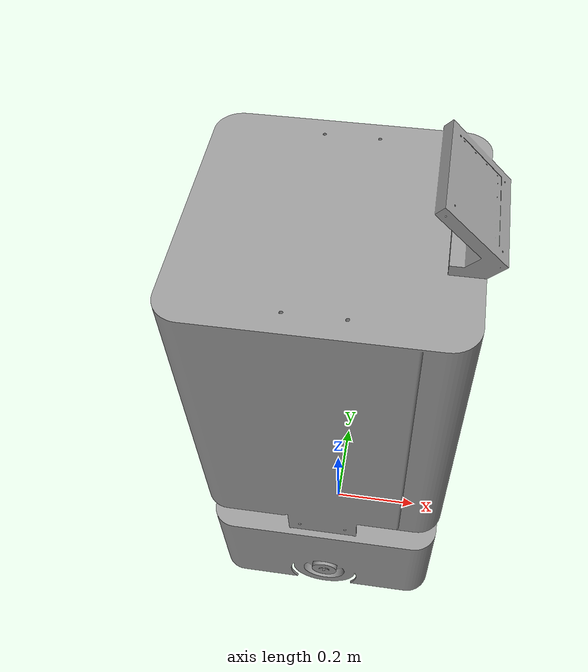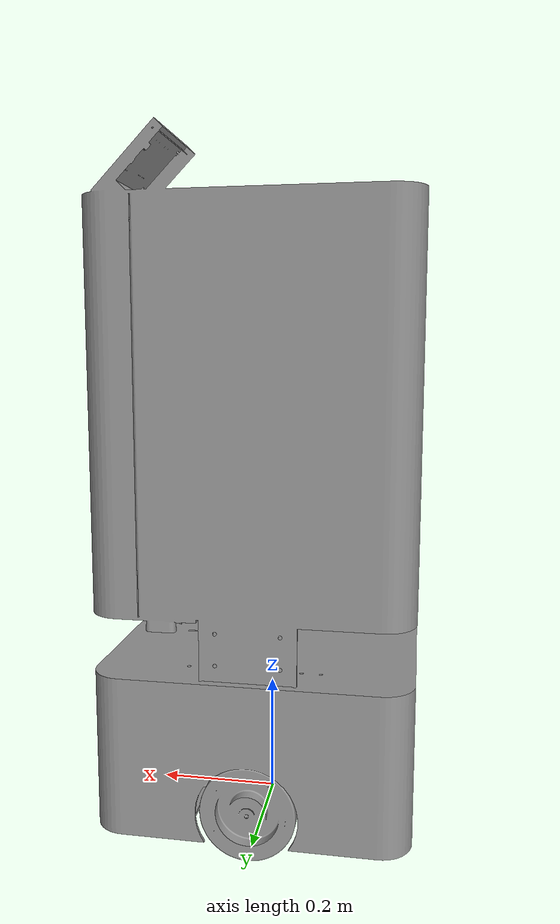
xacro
<?xml version="1.0"?>
<robot xmlns:xacro="http://www.ros.org/wiki/xacro">

    <xacro:property name="base_length" value="0.5" />
    <xacro:property name="base_width" value="0.4" />
    <xacro:property name="base_height" value="0.2" />
    <xacro:property name="lidar_radius" value="0.025" />
    <xacro:property name="lidar_length" value="0.04" />
    <xacro:property name="wheel_radius" value="0.075" />
    <xacro:property name="wheel_length" value="0.05" />

    <link name="base_footprint" />

    <link name="base_link">
        <visual>
            <geometry>
                <mesh filename="package://prestobot_description/meshes/base_close.stl" scale="0.001 0.001 0.001"/>
            </geometry>
            <origin xyz="0.277 -0.25 -0.077" rpy="1.57 0 3.14"/>
            <material name="grey"/>
        </visual>
        <collision>
            <geometry>
                <box size="${base_length} ${base_width} ${base_height}" />
            </geometry>
            <origin xyz="0 0 ${base_height / 2.0}" rpy="0 0 0" />
        </collision>
        <xacro:box_inertia m="5.0" x="${base_length}" y="${base_width}" z="${base_height}"
                           o_xyz="0 0 ${base_height / 2.0}" o_rpy="0 0 0" />
    </link>

    <link name="base_scan">
        <collision>
            <geometry>
                <cylinder radius="${lidar_radius}" length="${lidar_length}" />
            </geometry>
            <origin xyz="0 0 ${lidar_length / 2.0}" rpy="0 0 0" />
        </collision>
        <xacro:cylinder_inertia m="0.1" r="${lidar_radius}" l="${lidar_length}"
                                o_xyz="0 0 ${lidar_length / 2.0}" o_rpy="0 0 0" />
    </link>

    <link name="imu_link" />

    <xacro:macro name="wheel_link" params="prefix">
        <link name="${prefix}_wheel_link">
            <collision>
                <geometry>
                    <sphere radius="${wheel_radius}" />
                </geometry>
                <origin xyz="0 0 0" rpy="0 0 0" />
            </collision>
            <xacro:cylinder_inertia m="1.0" r="${wheel_radius}" l="${wheel_length}"
                                    o_xyz="0 0 0" o_rpy="${pi / 2.0} 0 0" />
        </link>
    </xacro:macro>

    <xacro:wheel_link prefix="left" />
    <xacro:wheel_link prefix="right" />

    <xacro:macro name="caster_link" params="prefix">
        <link name="${prefix}_caster_link">
            <collision>
                <geometry>
                    <sphere radius="${wheel_radius / 2.0}" />
                </geometry>
                <origin xyz="0 0 0" rpy="0 0 0" />
            </collision>
            <xacro:sphere_inertia m="0.5" r="${wheel_radius / 2.0}"
                                  o_xyz="0 0 0" o_rpy="0 0 0" />
        </link>
    </xacro:macro>

    <xacro:caster_link prefix="front_left" />
    <xacro:caster_link prefix="front_right" />
    <xacro:caster_link prefix="rear_left" />
    <xacro:caster_link prefix="rear_right" />

    <joint name="base_joint" type="fixed">
        <parent link="base_footprint" />
        <child link="base_link" />
        <origin xyz="0 0 ${wheel_radius}" rpy="0 0 0"/>
    </joint>

    <joint name="base_scan_joint" type="fixed">
        <parent link="base_link" />
        <child link="base_scan" />
        <origin xyz="0.2 0 ${base_height + 0.06}" rpy="0 0 3.14" />
    </joint>

    <joint name="imu_joint" type="fixed">
        <parent link="base_link" />
        <child link="imu_link" />
        <origin xyz="-0.06 0 0.09" rpy="0 0 0" />
    </joint>

    <joint name="base_left_wheel_joint" type="continuous">
        <parent link="base_link" />
        <child link="left_wheel_link" />
        <origin xyz="0 ${(base_width + wheel_length) / 2.0} 0" rpy="0 0 0" />
        <axis xyz="0 1 0" />
    </joint>

    <joint name="base_right_wheel_joint" type="continuous">
        <parent link="base_link" />
        <child link="right_wheel_link" />
        <origin xyz="0 ${-(base_width + wheel_length) / 2.0} 0" rpy="0 0 0" />
        <axis xyz="0 1 0" />
    </joint>

    <joint name="base_front_left_caster_joint" type="fixed">
        <parent link="base_link" />
        <child link="front_left_caster_link" />
        <origin xyz="${base_length / 3.0} ${base_width / 3.0} ${-wheel_radius / 2.0}" rpy="0 0 0" />
    </joint>

    <joint name="base_front_right_caster_joint" type="fixed">
        <parent link="base_link" />
        <child link="front_right_caster_link" />
        <origin xyz="${base_length / 3.0} ${-base_width / 3.0} ${-wheel_radius / 2.0}" rpy="0 0 0" />
    </joint>

    <joint name="base_rear_left_caster_joint" type="fixed">
        <parent link="base_link" />
        <child link="rear_left_caster_link" />
        <origin xyz="${-base_length / 3.0} ${base_width / 3.0} ${-wheel_radius / 2.0}" rpy="0 0 0" />
    </joint>

    <joint name="base_rear_right_caster_joint" type="fixed">
        <parent link="base_link" />
        <child link="rear_right_caster_link" />
        <origin xyz="${-base_length / 3.0} ${-base_width / 3.0} ${-wheel_radius / 2.0}" rpy="0 0 0" />
    </joint>

</robot>
